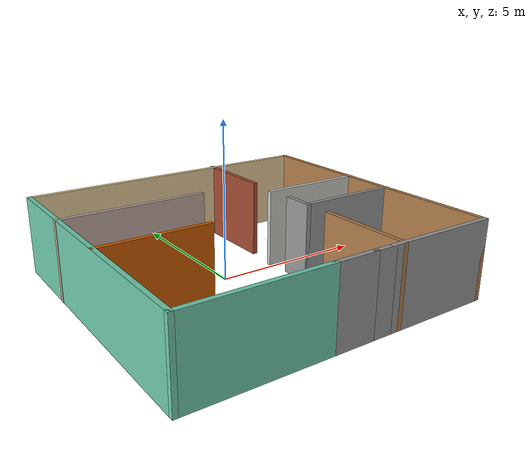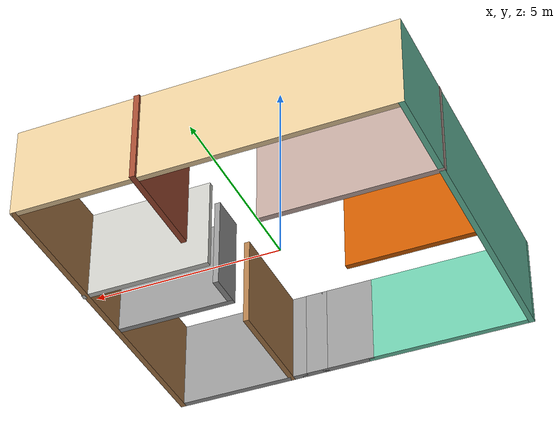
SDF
<?xml version='1.0'?>
<sdf version='1.6'>
  <model name='world2'>
    <pose frame=''>0.293367 -0.68691 0 0 -0 0</pose>
    <link name='Wall_0'>
      <collision name='Wall_0_Collision'>
        <geometry>
          <box>
            <size>4.5 0.15 2.5</size>
          </box>
        </geometry>
        <pose frame=''>0 0 1.25 0 -0 0</pose>
      </collision>
      <visual name='Wall_0_Visual'>
        <pose frame=''>0 0 1.25 0 -0 0</pose>
        <geometry>
          <box>
            <size>4.5 0.15 2.5</size>
          </box>
        </geometry>
        <material>
          <script>
            <uri>file://media/materials/scripts/gazebo.material</uri>
            <name>Gazebo/Grey</name>
          </script>
          <ambient>0.435294 0.796078 0.67451 1</ambient>
        </material>
        <meta>
          <layer>0</layer>
        </meta>
      </visual>
      <pose frame=''>-2.75939 -4.58853 0 0 -0 3.14159</pose>
    </link>
    <link name='Wall_1'>
      <collision name='Wall_1_Collision'>
        <geometry>
          <box>
            <size>9.25 0.15 2.5</size>
          </box>
        </geometry>
        <pose frame=''>0 0 1.25 0 -0 0</pose>
      </collision>
      <visual name='Wall_1_Visual'>
        <pose frame=''>0 0 1.25 0 -0 0</pose>
        <geometry>
          <box>
            <size>9.25 0.15 2.5</size>
          </box>
        </geometry>
        <material>
          <script>
            <uri>file://media/materials/scripts/gazebo.material</uri>
            <name>Gazebo/Grey</name>
          </script>
          <ambient>0.435294 0.796078 0.67451 1</ambient>
        </material>
        <meta>
          <layer>0</layer>
        </meta>
      </visual>
      <pose frame=''>-4.93439 -0.038534 0 0 -0 1.5708</pose>
    </link>
    <link name='Wall_11'>
      <collision name='Wall_11_Collision'>
        <geometry>
          <box>
            <size>2.75 0.15 2.5</size>
          </box>
        </geometry>
        <pose frame=''>0 0 1.25 0 -0 0</pose>
      </collision>
      <visual name='Wall_11_Visual'>
        <pose frame=''>0 0 1.25 0 -0 0</pose>
        <geometry>
          <box>
            <size>2.75 0.15 2.5</size>
          </box>
        </geometry>
        <material>
          <script>
            <uri>file://media/materials/scripts/gazebo.material</uri>
            <name>Gazebo/Bricks</name>
          </script>
          <ambient>1 1 1 1</ambient>
        </material>
        <meta>
          <layer>0</layer>
        </meta>
      </visual>
      <pose frame=''>1.70322 3.28853 0 0 -0 -1.5708</pose>
    </link>
    <link name='Wall_13'>
      <collision name='Wall_13_Collision'>
        <geometry>
          <box>
            <size>3.5 0.15 2.5</size>
          </box>
        </geometry>
        <pose frame=''>0 0 1.25 0 -0 0</pose>
      </collision>
      <visual name='Wall_13_Visual'>
        <pose frame=''>0 0 1.25 0 -0 0</pose>
        <geometry>
          <box>
            <size>3.5 0.15 2.5</size>
          </box>
        </geometry>
        <material>
          <script>
            <uri>file://media/materials/scripts/gazebo.material</uri>
            <name>Gazebo/CeilingTiled</name>
          </script>
          <ambient>0.760784 0.662745 0.627451 1</ambient>
        </material>
        <meta>
          <layer>0</layer>
        </meta>
      </visual>
      <pose frame=''>3.27183 0.891107 0 0 -0 0</pose>
    </link>
    <link name='Wall_15'>
      <collision name='Wall_15_Collision'>
        <geometry>
          <box>
            <size>1 0.15 2.5</size>
          </box>
        </geometry>
        <pose frame=''>0 0 1.25 0 -0 0</pose>
      </collision>
      <visual name='Wall_15_Visual'>
        <pose frame=''>0 0 1.25 0 -0 0</pose>
        <geometry>
          <box>
            <size>1 0.15 2.5</size>
          </box>
        </geometry>
        <material>
          <script>
            <uri>file://media/materials/scripts/gazebo.material</uri>
            <name>Gazebo/Grey</name>
          </script>
          <ambient>1 1 1 1</ambient>
        </material>
        <meta>
          <layer>0</layer>
        </meta>
      </visual>
      <pose frame=''>1.70322 -0.358499 0 0 -0 -1.5708</pose>
    </link>
    <link name='Wall_16'>
      <collision name='Wall_16_Collision'>
        <geometry>
          <box>
            <size>3.25 0.15 2.5</size>
          </box>
        </geometry>
        <pose frame=''>0 0 1.25 0 -0 0</pose>
      </collision>
      <visual name='Wall_16_Visual'>
        <pose frame=''>0 0 1.25 0 -0 0</pose>
        <geometry>
          <box>
            <size>3.25 0.15 2.5</size>
          </box>
        </geometry>
        <material>
          <script>
            <uri>file://media/materials/scripts/gazebo.material</uri>
            <name>Gazebo/Grey</name>
          </script>
          <ambient>1 1 1 1</ambient>
        </material>
        <meta>
          <layer>0</layer>
        </meta>
      </visual>
      <pose frame=''>3.25323 -0.783499 0 0 -0 0</pose>
    </link>
    <link name='Wall_18'>
      <collision name='Wall_18_Collision'>
        <geometry>
          <box>
            <size>3.5 0.15 2.5</size>
          </box>
        </geometry>
        <pose frame=''>0 0 1.25 0 -0 0</pose>
      </collision>
      <visual name='Wall_18_Visual'>
        <pose frame=''>0 0 1.25 0 -0 0</pose>
        <geometry>
          <box>
            <size>3.5 0.15 2.5</size>
          </box>
        </geometry>
        <material>
          <script>
            <uri>file://media/materials/scripts/gazebo.material</uri>
            <name>Gazebo/Grey</name>
          </script>
          <ambient>0.807843 0.360784 0 1</ambient>
        </material>
        <meta>
          <layer>0</layer>
        </meta>
      </visual>
      <pose frame=''>-3.24522 -0.598504 0 0 -0 0</pose>
    </link>
    <link name='Wall_2'>
      <collision name='Wall_2_Collision'>
        <geometry>
          <box>
            <size>10 0.15 2.5</size>
          </box>
        </geometry>
        <pose frame=''>0 0 1.25 0 -0 0</pose>
      </collision>
      <visual name='Wall_2_Visual'>
        <pose frame=''>0 0 1.25 0 -0 0</pose>
        <geometry>
          <box>
            <size>10 0.15 2.5</size>
          </box>
        </geometry>
        <material>
          <script>
            <uri>file://media/materials/scripts/gazebo.material</uri>
            <name>Gazebo/Grey</name>
          </script>
          <ambient>0.921569 0.807843 0.615686 1</ambient>
        </material>
        <meta>
          <layer>0</layer>
        </meta>
      </visual>
      <pose frame=''>-0.009392 4.51147 0 0 -0 0</pose>
    </link>
    <link name='Wall_20'>
      <collision name='Wall_20_Collision'>
        <geometry>
          <box>
            <size>1.45 0.15 2.5</size>
          </box>
        </geometry>
        <pose frame=''>0 0 1.25 0 -0 0</pose>
      </collision>
      <visual name='Wall_20_Visual'>
        <pose frame=''>0 0 1.25 0 -0 0</pose>
        <geometry>
          <box>
            <size>1.45 0.15 2.5</size>
          </box>
        </geometry>
        <material>
          <script>
            <uri>file://media/materials/scripts/gazebo.material</uri>
            <name>Gazebo/Grey</name>
          </script>
          <ambient>1 1 1 1</ambient>
        </material>
        <meta>
          <layer>0</layer>
        </meta>
      </visual>
      <pose frame=''>0.065608 -4.58853 0 0 -0 0</pose>
    </link>
    <link name='Wall_3'>
      <collision name='Wall_3_Collision'>
        <geometry>
          <box>
            <size>9.25 0.15 2.5</size>
          </box>
        </geometry>
        <pose frame=''>0 0 1.25 0 -0 0</pose>
      </collision>
      <visual name='Wall_3_Visual'>
        <pose frame=''>0 0 1.25 0 -0 0</pose>
        <geometry>
          <box>
            <size>9.25 0.15 2.5</size>
          </box>
        </geometry>
        <material>
          <script>
            <uri>file://media/materials/scripts/gazebo.material</uri>
            <name>Gazebo/Wood</name>
          </script>
          <ambient>1 1 1 1</ambient>
        </material>
        <meta>
          <layer>0</layer>
        </meta>
      </visual>
      <pose frame=''>4.91561 -0.038534 0 0 -0 -1.5708</pose>
    </link>
    <link name='Wall_4'>
      <collision name='Wall_4_Collision'>
        <geometry>
          <box>
            <size>3.75 0.15 2.5</size>
          </box>
        </geometry>
        <pose frame=''>0 0 1.25 0 -0 0</pose>
      </collision>
      <visual name='Wall_4_Visual'>
        <pose frame=''>0 0 1.25 0 -0 0</pose>
        <geometry>
          <box>
            <size>3.75 0.15 2.5</size>
          </box>
        </geometry>
        <material>
          <script>
            <uri>file://media/materials/scripts/gazebo.material</uri>
            <name>Gazebo/Grey</name>
          </script>
          <ambient>1 1 1 1</ambient>
        </material>
        <meta>
          <layer>0</layer>
        </meta>
      </visual>
      <pose frame=''>3.11561 -4.58853 0 0 -0 3.14159</pose>
    </link>
    <link name='Wall_5'>
      <collision name='Wall_5_Collision'>
        <geometry>
          <box>
            <size>0.75 0.15 2.5</size>
          </box>
        </geometry>
        <pose frame=''>0 0 1.25 0 -0 0</pose>
      </collision>
      <visual name='Wall_5_Visual'>
        <pose frame=''>0 0 1.25 0 -0 0</pose>
        <geometry>
          <box>
            <size>0.75 0.15 2.5</size>
          </box>
        </geometry>
        <material>
          <script>
            <uri>file://media/materials/scripts/gazebo.material</uri>
            <name>Gazebo/Grey</name>
          </script>
          <ambient>1 1 1 1</ambient>
        </material>
        <meta>
          <layer>0</layer>
        </meta>
      </visual>
      <pose frame=''>1.01561 -4.58853 0 0 -0 3.14159</pose>
    </link>
    <link name='Wall_7'>
      <collision name='Wall_7_Collision'>
        <geometry>
          <box>
            <size>3 0.15 2.5</size>
          </box>
        </geometry>
        <pose frame=''>0 0 1.25 0 -0 0</pose>
      </collision>
      <visual name='Wall_7_Visual'>
        <pose frame=''>0 0 1.25 0 -0 0</pose>
        <geometry>
          <box>
            <size>3 0.15 2.5</size>
          </box>
        </geometry>
        <material>
          <script>
            <uri>file://media/materials/scripts/gazebo.material</uri>
            <name>Gazebo/Wood</name>
          </script>
          <ambient>1 1 1 1</ambient>
        </material>
        <meta>
          <layer>0</layer>
        </meta>
      </visual>
      <pose frame=''>1.70322 -3.16353 0 0 -0 1.5708</pose>
    </link>
    <link name='Wall_9'>
      <collision name='Wall_9_Collision'>
        <geometry>
          <box>
            <size>4.75 0.15 2.5</size>
          </box>
        </geometry>
        <pose frame=''>0 0 1.25 0 -0 0</pose>
      </collision>
      <visual name='Wall_9_Visual'>
        <pose frame=''>0 0 1.25 0 -0 0</pose>
        <geometry>
          <box>
            <size>4.75 0.15 2.5</size>
          </box>
        </geometry>
        <material>
          <script>
            <uri>file://media/materials/scripts/gazebo.material</uri>
            <name>Gazebo/Grey</name>
          </script>
          <ambient>0.760784 0.662745 0.627451 1</ambient>
        </material>
        <meta>
          <layer>0</layer>
        </meta>
      </visual>
      <pose frame=''>-2.64682 1.98171 0 0 -0 0</pose>
    </link>
    <static>1</static>
  </model>
</sdf>
